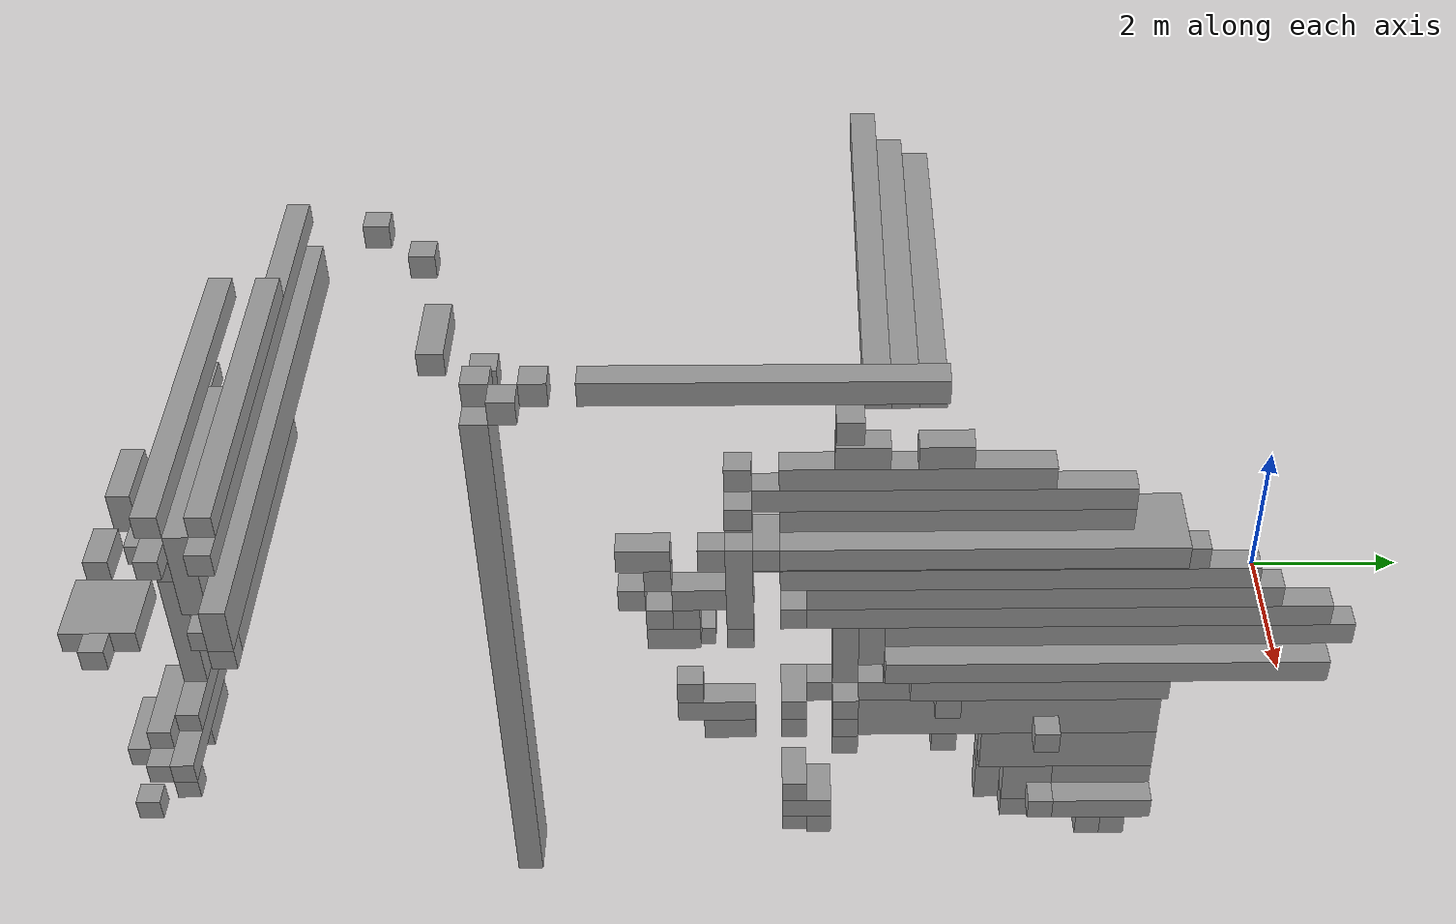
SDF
<sdf version="1.6">
 <world name="bt_world">
  <include><uri>model://sun</uri></include>
  <model name="obstacle_1869">
   <static>true</static>
   <pose>0.8999999999999999 -13.049999999999999 3.3 0 0 0</pose>
   <link name="link">
    <collision name="collision"><geometry><box><size>7.199999999999999 0.3 0.6</size></box></geometry></collision>
    <visual name="visual">
     <geometry><box><size>7.199999999999999 0.3 0.6</size></box></geometry>
     <material><ambient>0.5 0.5 0.5 1</ambient><diffuse>0.6 0.6 0.6 1</diffuse></material>
    </visual>
   </link>
  </model>
  <model name="obstacle_1879">
   <static>true</static>
   <pose>1.05 -13.049999999999999 4.35 0 0 0</pose>
   <link name="link">
    <collision name="collision">
     <geometry><box><size>6.8999999999999995 0.3 0.3</size></box></geometry>
    </collision>
    <visual name="visual">
     <geometry><box><size>6.8999999999999995 0.3 0.3</size></box></geometry>
     <material><ambient>0.5 0.5 0.5 1</ambient><diffuse>0.6 0.6 0.6 1</diffuse></material>
    </visual>
   </link>
  </model>
  <model name="obstacle_1964">
   <static>true</static>
   <pose>1.5 -5.55 6.45 0 0 0</pose>
   <link name="link">
    <collision name="collision">
     <geometry><box><size>5.3999999999999995 0.3 0.3</size></box></geometry>
    </collision>
    <visual name="visual">
     <geometry><box><size>5.3999999999999995 0.3 0.3</size></box></geometry>
     <material><ambient>0.5 0.5 0.5 1</ambient><diffuse>0.6 0.6 0.6 1</diffuse></material>
    </visual>
   </link>
  </model>
  <model name="obstacle_1965">
   <static>true</static>
   <pose>0.75 -3.15 -0.15 0 0 0</pose>
   <link name="link">
    <collision name="collision"><geometry><box><size>3.9 0.3 0.3</size></box></geometry></collision>
    <visual name="visual">
     <geometry><box><size>3.9 0.3 0.3</size></box></geometry>
     <material><ambient>0.5 0.5 0.5 1</ambient><diffuse>0.6 0.6 0.6 1</diffuse></material>
    </visual>
   </link>
  </model>
  <model name="obstacle_2043">
   <static>true</static>
   <pose>1.05 -14.25 2.85 0 0 0</pose>
   <link name="link">
    <collision name="collision"><geometry><box><size>3.9 0.3 0.3</size></box></geometry></collision>
    <visual name="visual">
     <geometry><box><size>3.9 0.3 0.3</size></box></geometry>
     <material><ambient>0.5 0.5 0.5 1</ambient><diffuse>0.6 0.6 0.6 1</diffuse></material>
    </visual>
   </link>
  </model>
  <model name="obstacle_2045">
   <static>true</static>
   <pose>0.8999999999999999 -2.85 -0.15 0 0 0</pose>
   <link name="link">
    <collision name="collision">
     <geometry><box><size>3.5999999999999996 0.3 0.3</size></box></geometry>
    </collision>
    <visual name="visual">
     <geometry><box><size>3.5999999999999996 0.3 0.3</size></box></geometry>
     <material><ambient>0.5 0.5 0.5 1</ambient><diffuse>0.6 0.6 0.6 1</diffuse></material>
    </visual>
   </link>
  </model>
  <model name="obstacle_2099">
   <static>true</static>
   <pose>1.7999999999999998 -5.25 6.45 0 0 0</pose>
   <link name="link">
    <collision name="collision"><geometry><box><size>4.8 0.3 0.3</size></box></geometry></collision>
    <visual name="visual">
     <geometry><box><size>4.8 0.3 0.3</size></box></geometry>
     <material><ambient>0.5 0.5 0.5 1</ambient><diffuse>0.6 0.6 0.6 1</diffuse></material>
    </visual>
   </link>
  </model>
  <model name="obstacle_2118">
   <static>true</static>
   <pose>1.95 -13.65 4.6499999999999995 0 0 0</pose>
   <link name="link">
    <collision name="collision"><geometry><box><size>4.5 0.3 0.3</size></box></geometry></collision>
    <visual name="visual">
     <geometry><box><size>4.5 0.3 0.3</size></box></geometry>
     <material><ambient>0.5 0.5 0.5 1</ambient><diffuse>0.6 0.6 0.6 1</diffuse></material>
    </visual>
   </link>
  </model>
  <model name="obstacle_2119">
   <static>true</static>
   <pose>1.95 -13.049999999999999 4.6499999999999995 0 0 0</pose>
   <link name="link">
    <collision name="collision"><geometry><box><size>4.5 0.3 0.3</size></box></geometry></collision>
    <visual name="visual">
     <geometry><box><size>4.5 0.3 0.3</size></box></geometry>
     <material><ambient>0.5 0.5 0.5 1</ambient><diffuse>0.6 0.6 0.6 1</diffuse></material>
    </visual>
   </link>
  </model>
  <model name="obstacle_2121">
   <static>true</static>
   <pose>1.95 -4.95 6.45 0 0 0</pose>
   <link name="link">
    <collision name="collision"><geometry><box><size>4.5 0.3 0.3</size></box></geometry></collision>
    <visual name="visual">
     <geometry><box><size>4.5 0.3 0.3</size></box></geometry>
     <material><ambient>0.5 0.5 0.5 1</ambient><diffuse>0.6 0.6 0.6 1</diffuse></material>
    </visual>
   </link>
  </model>
  <model name="obstacle_2163">
   <static>true</static>
   <pose>1.3499999999999999 -14.399999999999999 2.55 0 0 0</pose>
   <link name="link">
    <collision name="collision"><geometry><box><size>2.1 0.6 0.3</size></box></geometry></collision>
    <visual name="visual">
     <geometry><box><size>2.1 0.6 0.3</size></box></geometry>
     <material><ambient>0.5 0.5 0.5 1</ambient><diffuse>0.6 0.6 0.6 1</diffuse></material>
    </visual>
   </link>
  </model>
  <model name="obstacle_2165">
   <static>true</static>
   <pose>2.25 -13.2 2.85 0 0 0</pose>
   <link name="link">
    <collision name="collision"><geometry><box><size>3.9 0.6 0.3</size></box></geometry></collision>
    <visual name="visual">
     <geometry><box><size>3.9 0.6 0.3</size></box></geometry>
     <material><ambient>0.5 0.5 0.5 1</ambient><diffuse>0.6 0.6 0.6 1</diffuse></material>
    </visual>
   </link>
  </model>
  <model name="obstacle_2185">
   <static>true</static>
   <pose>0.8999999999999999 -14.399999999999999 2.25 0 0 0</pose>
   <link name="link">
    <collision name="collision"><geometry><box><size>0.6 0.6 0.3</size></box></geometry></collision>
    <visual name="visual">
     <geometry><box><size>0.6 0.6 0.3</size></box></geometry>
     <material><ambient>0.5 0.5 0.5 1</ambient><diffuse>0.6 0.6 0.6 1</diffuse></material>
    </visual>
   </link>
  </model>
  <model name="obstacle_2190">
   <static>true</static>
   <pose>0.8999999999999999 -7.6499999999999995 -0.15 0 0 0</pose>
   <link name="link">
    <collision name="collision"><geometry><box><size>0.6 0.3 0.3</size></box></geometry></collision>
    <visual name="visual">
     <geometry><box><size>0.6 0.3 0.3</size></box></geometry>
     <material><ambient>0.5 0.5 0.5 1</ambient><diffuse>0.6 0.6 0.6 1</diffuse></material>
    </visual>
   </link>
  </model>
  <model name="obstacle_2206">
   <static>true</static>
   <pose>1.3499999999999999 -14.85 2.6999999999999997 0 0 0</pose>
   <link name="link">
    <collision name="collision">
     <geometry><box><size>0.8999999999999999 0.3 0.6</size></box></geometry>
    </collision>
    <visual name="visual">
     <geometry><box><size>0.8999999999999999 0.3 0.6</size></box></geometry>
     <material><ambient>0.5 0.5 0.5 1</ambient><diffuse>0.6 0.6 0.6 1</diffuse></material>
    </visual>
   </link>
  </model>
  <model name="obstacle_2207">
   <static>true</static>
   <pose>2.25 -14.25 -0.15 0 0 0</pose>
   <link name="link">
    <collision name="collision">
     <geometry><box><size>2.6999999999999997 0.3 0.3</size></box></geometry>
    </collision>
    <visual name="visual">
     <geometry><box><size>2.6999999999999997 0.3 0.3</size></box></geometry>
     <material><ambient>0.5 0.5 0.5 1</ambient><diffuse>0.6 0.6 0.6 1</diffuse></material>
    </visual>
   </link>
  </model>
  <model name="obstacle_2208">
   <static>true</static>
   <pose>1.05 -11.25 6.45 0 0 0</pose>
   <link name="link">
    <collision name="collision"><geometry><box><size>0.3 0.3 0.3</size></box></geometry></collision>
    <visual name="visual">
     <geometry><box><size>0.3 0.3 0.3</size></box></geometry>
     <material><ambient>0.5 0.5 0.5 1</ambient><diffuse>0.6 0.6 0.6 1</diffuse></material>
    </visual>
   </link>
  </model>
  <model name="obstacle_2218">
   <static>true</static>
   <pose>1.3499999999999999 -14.549999999999999 -0.15 0 0 0</pose>
   <link name="link">
    <collision name="collision"><geometry><box><size>0.3 0.3 0.3</size></box></geometry></collision>
    <visual name="visual">
     <geometry><box><size>0.3 0.3 0.3</size></box></geometry>
     <material><ambient>0.5 0.5 0.5 1</ambient><diffuse>0.6 0.6 0.6 1</diffuse></material>
    </visual>
   </link>
  </model>
  <model name="obstacle_2219">
   <static>true</static>
   <pose>1.3499999999999999 -14.25 0.6 0 0 0</pose>
   <link name="link">
    <collision name="collision"><geometry><box><size>0.3 0.3 1.2</size></box></geometry></collision>
    <visual name="visual">
     <geometry><box><size>0.3 0.3 1.2</size></box></geometry>
     <material><ambient>0.5 0.5 0.5 1</ambient><diffuse>0.6 0.6 0.6 1</diffuse></material>
    </visual>
   </link>
  </model>
  <model name="obstacle_2220">
   <static>true</static>
   <pose>1.7999999999999998 -14.25 2.25 0 0 0</pose>
   <link name="link">
    <collision name="collision"><geometry><box><size>1.2 0.3 0.3</size></box></geometry></collision>
    <visual name="visual">
     <geometry><box><size>1.2 0.3 0.3</size></box></geometry>
     <material><ambient>0.5 0.5 0.5 1</ambient><diffuse>0.6 0.6 0.6 1</diffuse></material>
    </visual>
   </link>
  </model>
  <model name="obstacle_2228">
   <static>true</static>
   <pose>1.7999999999999998 -14.549999999999999 2.25 0 0 0</pose>
   <link name="link">
    <collision name="collision"><geometry><box><size>0.6 0.3 0.3</size></box></geometry></collision>
    <visual name="visual">
     <geometry><box><size>0.6 0.3 0.3</size></box></geometry>
     <material><ambient>0.5 0.5 0.5 1</ambient><diffuse>0.6 0.6 0.6 1</diffuse></material>
    </visual>
   </link>
  </model>
  <model name="obstacle_2229">
   <static>true</static>
   <pose>2.85 -13.35 3.9 0 0 0</pose>
   <link name="link">
    <collision name="collision">
     <geometry><box><size>2.6999999999999997 0.3 1.2</size></box></geometry>
    </collision>
    <visual name="visual">
     <geometry><box><size>2.6999999999999997 0.3 1.2</size></box></geometry>
     <material><ambient>0.5 0.5 0.5 1</ambient><diffuse>0.6 0.6 0.6 1</diffuse></material>
    </visual>
   </link>
  </model>
  <model name="obstacle_2230">
   <static>true</static>
   <pose>1.65 -10.65 6.45 0 0 0</pose>
   <link name="link">
    <collision name="collision"><geometry><box><size>0.3 0.3 0.3</size></box></geometry></collision>
    <visual name="visual">
     <geometry><box><size>0.3 0.3 0.3</size></box></geometry>
     <material><ambient>0.5 0.5 0.5 1</ambient><diffuse>0.6 0.6 0.6 1</diffuse></material>
    </visual>
   </link>
  </model>
  <model name="obstacle_2244">
   <static>true</static>
   <pose>2.25 -14.25 -0.44999999999999996 0 0 0</pose>
   <link name="link">
    <collision name="collision">
     <geometry><box><size>0.8999999999999999 0.3 0.3</size></box></geometry>
    </collision>
    <visual name="visual">
     <geometry><box><size>0.8999999999999999 0.3 0.3</size></box></geometry>
     <material><ambient>0.5 0.5 0.5 1</ambient><diffuse>0.6 0.6 0.6 1</diffuse></material>
    </visual>
   </link>
  </model>
  <model name="obstacle_2245">
   <static>true</static>
   <pose>2.4 -14.25 0.15 0 0 0</pose>
   <link name="link">
    <collision name="collision"><geometry><box><size>1.2 0.3 0.3</size></box></geometry></collision>
    <visual name="visual">
     <geometry><box><size>1.2 0.3 0.3</size></box></geometry>
     <material><ambient>0.5 0.5 0.5 1</ambient><diffuse>0.6 0.6 0.6 1</diffuse></material>
    </visual>
   </link>
  </model>
  <model name="obstacle_2246">
   <static>true</static>
   <pose>2.1 -14.25 1.2 0 0 0</pose>
   <link name="link">
    <collision name="collision">
     <geometry><box><size>0.6 0.3 1.7999999999999998</size></box></geometry>
    </collision>
    <visual name="visual">
     <geometry><box><size>0.6 0.3 1.7999999999999998</size></box></geometry>
     <material><ambient>0.5 0.5 0.5 1</ambient><diffuse>0.6 0.6 0.6 1</diffuse></material>
    </visual>
   </link>
  </model>
  <model name="obstacle_2247">
   <static>true</static>
   <pose>2.85 -13.35 3.15 0 0 0</pose>
   <link name="link">
    <collision name="collision"><geometry><box><size>2.1 0.3 0.3</size></box></geometry></collision>
    <visual name="visual">
     <geometry><box><size>2.1 0.3 0.3</size></box></geometry>
     <material><ambient>0.5 0.5 0.5 1</ambient><diffuse>0.6 0.6 0.6 1</diffuse></material>
    </visual>
   </link>
  </model>
  <model name="obstacle_2258">
   <static>true</static>
   <pose>2.85 -14.549999999999999 -0.15 0 0 0</pose>
   <link name="link">
    <collision name="collision"><geometry><box><size>1.5 0.3 0.3</size></box></geometry></collision>
    <visual name="visual">
     <geometry><box><size>1.5 0.3 0.3</size></box></geometry>
     <material><ambient>0.5 0.5 0.5 1</ambient><diffuse>0.6 0.6 0.6 1</diffuse></material>
    </visual>
   </link>
  </model>
  <model name="obstacle_2259">
   <static>true</static>
   <pose>2.6999999999999997 -14.549999999999999 0.15 0 0 0</pose>
   <link name="link">
    <collision name="collision"><geometry><box><size>1.2 0.3 0.3</size></box></geometry></collision>
    <visual name="visual">
     <geometry><box><size>1.2 0.3 0.3</size></box></geometry>
     <material><ambient>0.5 0.5 0.5 1</ambient><diffuse>0.6 0.6 0.6 1</diffuse></material>
    </visual>
   </link>
  </model>
  <model name="obstacle_2273">
   <static>true</static>
   <pose>2.85 -14.85 -0.15 0 0 0</pose>
   <link name="link">
    <collision name="collision">
     <geometry><box><size>0.8999999999999999 0.3 0.3</size></box></geometry>
    </collision>
    <visual name="visual">
     <geometry><box><size>0.8999999999999999 0.3 0.3</size></box></geometry>
     <material><ambient>0.5 0.5 0.5 1</ambient><diffuse>0.6 0.6 0.6 1</diffuse></material>
    </visual>
   </link>
  </model>
  <model name="obstacle_2274">
   <static>true</static>
   <pose>2.6999999999999997 -14.85 2.85 0 0 0</pose>
   <link name="link">
    <collision name="collision"><geometry><box><size>0.6 0.3 0.3</size></box></geometry></collision>
    <visual name="visual">
     <geometry><box><size>0.6 0.3 0.3</size></box></geometry>
     <material><ambient>0.5 0.5 0.5 1</ambient><diffuse>0.6 0.6 0.6 1</diffuse></material>
    </visual>
   </link>
  </model>
  <model name="obstacle_2275">
   <static>true</static>
   <pose>2.55 -3.75 -0.15 0 0 0</pose>
   <link name="link">
    <collision name="collision">
     <geometry><box><size>0.3 0.8999999999999999 0.3</size></box></geometry>
    </collision>
    <visual name="visual">
     <geometry><box><size>0.3 0.8999999999999999 0.3</size></box></geometry>
     <material><ambient>0.5 0.5 0.5 1</ambient><diffuse>0.6 0.6 0.6 1</diffuse></material>
    </visual>
   </link>
  </model>
  <model name="obstacle_2276">
   <static>true</static>
   <pose>2.55 -3.4499999999999997 0.15 0 0 0</pose>
   <link name="link">
    <collision name="collision"><geometry><box><size>0.3 0.3 0.3</size></box></geometry></collision>
    <visual name="visual">
     <geometry><box><size>0.3 0.3 0.3</size></box></geometry>
     <material><ambient>0.5 0.5 0.5 1</ambient><diffuse>0.6 0.6 0.6 1</diffuse></material>
    </visual>
   </link>
  </model>
  <model name="obstacle_2292">
   <static>true</static>
   <pose>3.15 -10.35 6.45 0 0 0</pose>
   <link name="link">
    <collision name="collision">
     <geometry><box><size>0.8999999999999999 0.3 0.3</size></box></geometry>
    </collision>
    <visual name="visual">
     <geometry><box><size>0.8999999999999999 0.3 0.3</size></box></geometry>
     <material><ambient>0.5 0.5 0.5 1</ambient><diffuse>0.6 0.6 0.6 1</diffuse></material>
    </visual>
   </link>
  </model>
  <model name="obstacle_2356">
   <static>true</static>
   <pose>3.75 -14.549999999999999 2.85 0 0 0</pose>
   <link name="link">
    <collision name="collision">
     <geometry><box><size>0.8999999999999999 0.8999999999999999 0.3</size></box></geometry>
    </collision>
    <visual name="visual">
     <geometry><box><size>0.8999999999999999 0.8999999999999999 0.3</size></box></geometry>
     <material><ambient>0.5 0.5 0.5 1</ambient><diffuse>0.6 0.6 0.6 1</diffuse></material>
    </visual>
   </link>
  </model>
  <model name="obstacle_2357">
   <static>true</static>
   <pose>3.4499999999999997 -14.25 -0.44999999999999996 0 0 0</pose>
   <link name="link">
    <collision name="collision"><geometry><box><size>0.3 0.3 0.3</size></box></geometry></collision>
    <visual name="visual">
     <geometry><box><size>0.3 0.3 0.3</size></box></geometry>
     <material><ambient>0.5 0.5 0.5 1</ambient><diffuse>0.6 0.6 0.6 1</diffuse></material>
    </visual>
   </link>
  </model>
  <model name="obstacle_2381">
   <static>true</static>
   <pose>3.75 -9.75 6.45 0 0 0</pose>
   <link name="link">
    <collision name="collision"><geometry><box><size>0.3 0.3 0.3</size></box></geometry></collision>
    <visual name="visual">
     <geometry><box><size>0.3 0.3 0.3</size></box></geometry>
     <material><ambient>0.5 0.5 0.5 1</ambient><diffuse>0.6 0.6 0.6 1</diffuse></material>
    </visual>
   </link>
  </model>
  <model name="obstacle_2392">
   <static>true</static>
   <pose>4.05 -14.549999999999999 -0.15 0 0 0</pose>
   <link name="link">
    <collision name="collision"><geometry><box><size>0.3 0.3 0.3</size></box></geometry></collision>
    <visual name="visual">
     <geometry><box><size>0.3 0.3 0.3</size></box></geometry>
     <material><ambient>0.5 0.5 0.5 1</ambient><diffuse>0.6 0.6 0.6 1</diffuse></material>
    </visual>
   </link>
  </model>
  <model name="obstacle_2393">
   <static>true</static>
   <pose>4.05 -6.3 -0.44999999999999996 0 0 0</pose>
   <link name="link">
    <collision name="collision"><geometry><box><size>0.3 0.6 0.3</size></box></geometry></collision>
    <visual name="visual">
     <geometry><box><size>0.3 0.6 0.3</size></box></geometry>
     <material><ambient>0.5 0.5 0.5 1</ambient><diffuse>0.6 0.6 0.6 1</diffuse></material>
    </visual>
   </link>
  </model>
  <model name="obstacle_2394">
   <static>true</static>
   <pose>4.2 -6.3 0.15 0 0 0</pose>
   <link name="link">
    <collision name="collision"><geometry><box><size>0.6 0.6 0.3</size></box></geometry></collision>
    <visual name="visual">
     <geometry><box><size>0.6 0.6 0.3</size></box></geometry>
     <material><ambient>0.5 0.5 0.5 1</ambient><diffuse>0.6 0.6 0.6 1</diffuse></material>
    </visual>
   </link>
  </model>
  <model name="obstacle_2395">
   <static>true</static>
   <pose>4.2 -6.45 0.44999999999999996 0 0 0</pose>
   <link name="link">
    <collision name="collision"><geometry><box><size>0.6 0.3 0.3</size></box></geometry></collision>
    <visual name="visual">
     <geometry><box><size>0.6 0.3 0.3</size></box></geometry>
     <material><ambient>0.5 0.5 0.5 1</ambient><diffuse>0.6 0.6 0.6 1</diffuse></material>
    </visual>
   </link>
  </model>
  <model name="obstacle_2396">
   <static>true</static>
   <pose>4.35 -4.35 4.6499999999999995 0 0 0</pose>
   <link name="link">
    <collision name="collision">
     <geometry><box><size>0.8999999999999999 4.5 0.3</size></box></geometry>
    </collision>
    <visual name="visual">
     <geometry><box><size>0.8999999999999999 4.5 0.3</size></box></geometry>
     <material><ambient>0.5 0.5 0.5 1</ambient><diffuse>0.6 0.6 0.6 1</diffuse></material>
    </visual>
   </link>
  </model>
  <model name="obstacle_2397">
   <static>true</static>
   <pose>4.2 -6.1499999999999995 -0.15 0 0 0</pose>
   <link name="link">
    <collision name="collision"><geometry><box><size>0.6 0.3 0.3</size></box></geometry></collision>
    <visual name="visual">
     <geometry><box><size>0.6 0.3 0.3</size></box></geometry>
     <material><ambient>0.5 0.5 0.5 1</ambient><diffuse>0.6 0.6 0.6 1</diffuse></material>
    </visual>
   </link>
  </model>
  <model name="obstacle_2398">
   <static>true</static>
   <pose>4.35 -2.85 2.85 0 0 0</pose>
   <link name="link">
    <collision name="collision">
     <geometry><box><size>0.8999999999999999 5.1 0.3</size></box></geometry>
    </collision>
    <visual name="visual">
     <geometry><box><size>0.8999999999999999 5.1 0.3</size></box></geometry>
     <material><ambient>0.5 0.5 0.5 1</ambient><diffuse>0.6 0.6 0.6 1</diffuse></material>
    </visual>
   </link>
  </model>
  <model name="obstacle_2399">
   <static>true</static>
   <pose>4.35 -3.5999999999999996 2.55 0 0 0</pose>
   <link name="link">
    <collision name="collision">
     <geometry><box><size>0.8999999999999999 3.0 0.3</size></box></geometry>
    </collision>
    <visual name="visual">
     <geometry><box><size>0.8999999999999999 3.0 0.3</size></box></geometry>
     <material><ambient>0.5 0.5 0.5 1</ambient><diffuse>0.6 0.6 0.6 1</diffuse></material>
    </visual>
   </link>
  </model>
  <model name="obstacle_2400">
   <static>true</static>
   <pose>4.05 -3.75 0.3 0 0 0</pose>
   <link name="link">
    <collision name="collision">
     <geometry><box><size>0.3 0.8999999999999999 0.6</size></box></geometry>
    </collision>
    <visual name="visual">
     <geometry><box><size>0.3 0.8999999999999999 0.6</size></box></geometry>
     <material><ambient>0.5 0.5 0.5 1</ambient><diffuse>0.6 0.6 0.6 1</diffuse></material>
    </visual>
   </link>
  </model>
  <model name="obstacle_2401">
   <static>true</static>
   <pose>4.05 -4.05 0.75 0 0 0</pose>
   <link name="link">
    <collision name="collision"><geometry><box><size>0.3 0.3 0.3</size></box></geometry></collision>
    <visual name="visual">
     <geometry><box><size>0.3 0.3 0.3</size></box></geometry>
     <material><ambient>0.5 0.5 0.5 1</ambient><diffuse>0.6 0.6 0.6 1</diffuse></material>
    </visual>
   </link>
  </model>
  <model name="obstacle_2402">
   <static>true</static>
   <pose>4.35 -2.6999999999999997 0.44999999999999996 0 0 0</pose>
   <link name="link">
    <collision name="collision">
     <geometry><box><size>0.8999999999999999 1.2 0.3</size></box></geometry>
    </collision>
    <visual name="visual">
     <geometry><box><size>0.8999999999999999 1.2 0.3</size></box></geometry>
     <material><ambient>0.5 0.5 0.5 1</ambient><diffuse>0.6 0.6 0.6 1</diffuse></material>
    </visual>
   </link>
  </model>
  <model name="obstacle_2458">
   <static>true</static>
   <pose>4.35 -14.549999999999999 2.85 0 0 0</pose>
   <link name="link">
    <collision name="collision"><geometry><box><size>0.3 0.3 0.3</size></box></geometry></collision>
    <visual name="visual">
     <geometry><box><size>0.3 0.3 0.3</size></box></geometry>
     <material><ambient>0.5 0.5 0.5 1</ambient><diffuse>0.6 0.6 0.6 1</diffuse></material>
    </visual>
   </link>
  </model>
  <model name="obstacle_2459">
   <static>true</static>
   <pose>4.35 -13.049999999999999 2.85 0 0 0</pose>
   <link name="link">
    <collision name="collision"><geometry><box><size>0.3 0.3 0.3</size></box></geometry></collision>
    <visual name="visual">
     <geometry><box><size>0.3 0.3 0.3</size></box></geometry>
     <material><ambient>0.5 0.5 0.5 1</ambient><diffuse>0.6 0.6 0.6 1</diffuse></material>
    </visual>
   </link>
  </model>
  <model name="obstacle_2460">
   <static>true</static>
   <pose>4.5 -9.75 3.0 0 0 0</pose>
   <link name="link">
    <collision name="collision"><geometry><box><size>0.6 0.3 7.199999999999999</size></box></geometry></collision>
    <visual name="visual">
     <geometry><box><size>0.6 0.3 7.199999999999999</size></box></geometry>
     <material><ambient>0.5 0.5 0.5 1</ambient><diffuse>0.6 0.6 0.6 1</diffuse></material>
    </visual>
   </link>
  </model>
  <model name="obstacle_2461">
   <static>true</static>
   <pose>4.35 -9.75 6.75 0 0 0</pose>
   <link name="link">
    <collision name="collision"><geometry><box><size>0.3 0.3 0.3</size></box></geometry></collision>
    <visual name="visual">
     <geometry><box><size>0.3 0.3 0.3</size></box></geometry>
     <material><ambient>0.5 0.5 0.5 1</ambient><diffuse>0.6 0.6 0.6 1</diffuse></material>
    </visual>
   </link>
  </model>
  <model name="obstacle_2462">
   <static>true</static>
   <pose>4.35 -9.15 6.75 0 0 0</pose>
   <link name="link">
    <collision name="collision"><geometry><box><size>0.3 0.3 0.3</size></box></geometry></collision>
    <visual name="visual">
     <geometry><box><size>0.3 0.3 0.3</size></box></geometry>
     <material><ambient>0.5 0.5 0.5 1</ambient><diffuse>0.6 0.6 0.6 1</diffuse></material>
    </visual>
   </link>
  </model>
  <model name="obstacle_2463">
   <static>true</static>
   <pose>4.35 -6.75 6.75 0 0 0</pose>
   <link name="link">
    <collision name="collision"><geometry><box><size>0.3 3.9 0.3</size></box></geometry></collision>
    <visual name="visual">
     <geometry><box><size>0.3 3.9 0.3</size></box></geometry>
     <material><ambient>0.5 0.5 0.5 1</ambient><diffuse>0.6 0.6 0.6 1</diffuse></material>
    </visual>
   </link>
  </model>
  <model name="obstacle_2464">
   <static>true</static>
   <pose>4.5 -7.6499999999999995 3.75 0 0 0</pose>
   <link name="link">
    <collision name="collision"><geometry><box><size>0.6 0.3 0.3</size></box></geometry></collision>
    <visual name="visual">
     <geometry><box><size>0.6 0.3 0.3</size></box></geometry>
     <material><ambient>0.5 0.5 0.5 1</ambient><diffuse>0.6 0.6 0.6 1</diffuse></material>
    </visual>
   </link>
  </model>
  <model name="obstacle_2465">
   <static>true</static>
   <pose>4.5 -7.05 4.2 0 0 0</pose>
   <link name="link">
    <collision name="collision"><geometry><box><size>0.6 0.3 1.2</size></box></geometry></collision>
    <visual name="visual">
     <geometry><box><size>0.6 0.3 1.2</size></box></geometry>
     <material><ambient>0.5 0.5 0.5 1</ambient><diffuse>0.6 0.6 0.6 1</diffuse></material>
    </visual>
   </link>
  </model>
  <model name="obstacle_2466">
   <static>true</static>
   <pose>4.35 -7.05 5.25 0 0 0</pose>
   <link name="link">
    <collision name="collision">
     <geometry><box><size>0.3 0.3 0.8999999999999999</size></box></geometry>
    </collision>
    <visual name="visual">
     <geometry><box><size>0.3 0.3 0.8999999999999999</size></box></geometry>
     <material><ambient>0.5 0.5 0.5 1</ambient><diffuse>0.6 0.6 0.6 1</diffuse></material>
    </visual>
   </link>
  </model>
  <model name="obstacle_2467">
   <static>true</static>
   <pose>4.35 -4.35 4.35 0 0 0</pose>
   <link name="link">
    <collision name="collision"><geometry><box><size>0.3 5.1 0.3</size></box></geometry></collision>
    <visual name="visual">
     <geometry><box><size>0.3 5.1 0.3</size></box></geometry>
     <material><ambient>0.5 0.5 0.5 1</ambient><diffuse>0.6 0.6 0.6 1</diffuse></material>
    </visual>
   </link>
  </model>
  <model name="obstacle_2468">
   <static>true</static>
   <pose>4.5 -6.75 4.6499999999999995 0 0 0</pose>
   <link name="link">
    <collision name="collision"><geometry><box><size>0.6 0.3 0.3</size></box></geometry></collision>
    <visual name="visual">
     <geometry><box><size>0.6 0.3 0.3</size></box></geometry>
     <material><ambient>0.5 0.5 0.5 1</ambient><diffuse>0.6 0.6 0.6 1</diffuse></material>
    </visual>
   </link>
  </model>
  <model name="obstacle_2469">
   <static>true</static>
   <pose>4.35 -4.8 5.25 0 0 0</pose>
   <link name="link">
    <collision name="collision"><geometry><box><size>0.3 4.2 0.3</size></box></geometry></collision>
    <visual name="visual">
     <geometry><box><size>0.3 4.2 0.3</size></box></geometry>
     <material><ambient>0.5 0.5 0.5 1</ambient><diffuse>0.6 0.6 0.6 1</diffuse></material>
    </visual>
   </link>
  </model>
  <model name="obstacle_2470">
   <static>true</static>
   <pose>4.5 -6.45 2.25 0 0 0</pose>
   <link name="link">
    <collision name="collision"><geometry><box><size>0.6 0.3 0.3</size></box></geometry></collision>
    <visual name="visual">
     <geometry><box><size>0.6 0.3 0.3</size></box></geometry>
     <material><ambient>0.5 0.5 0.5 1</ambient><diffuse>0.6 0.6 0.6 1</diffuse></material>
    </visual>
   </link>
  </model>
  <model name="obstacle_2471">
   <static>true</static>
   <pose>4.35 -3.4499999999999997 3.4499999999999997 0 0 0</pose>
   <link name="link">
    <collision name="collision"><geometry><box><size>0.3 6.3 0.3</size></box></geometry></collision>
    <visual name="visual">
     <geometry><box><size>0.3 6.3 0.3</size></box></geometry>
     <material><ambient>0.5 0.5 0.5 1</ambient><diffuse>0.6 0.6 0.6 1</diffuse></material>
    </visual>
   </link>
  </model>
  <model name="obstacle_2472">
   <static>true</static>
   <pose>4.5 -6.45 3.75 0 0 0</pose>
   <link name="link">
    <collision name="collision"><geometry><box><size>0.6 0.3 0.3</size></box></geometry></collision>
    <visual name="visual">
     <geometry><box><size>0.6 0.3 0.3</size></box></geometry>
     <material><ambient>0.5 0.5 0.5 1</ambient><diffuse>0.6 0.6 0.6 1</diffuse></material>
    </visual>
   </link>
  </model>
  <model name="obstacle_2473">
   <static>true</static>
   <pose>4.35 -3.9 4.05 0 0 0</pose>
   <link name="link">
    <collision name="collision">
     <geometry><box><size>0.3 5.3999999999999995 0.3</size></box></geometry>
    </collision>
    <visual name="visual">
     <geometry><box><size>0.3 5.3999999999999995 0.3</size></box></geometry>
     <material><ambient>0.5 0.5 0.5 1</ambient><diffuse>0.6 0.6 0.6 1</diffuse></material>
    </visual>
   </link>
  </model>
  <model name="obstacle_2474">
   <static>true</static>
   <pose>4.35 -4.6499999999999995 4.95 0 0 0</pose>
   <link name="link">
    <collision name="collision"><geometry><box><size>0.3 3.9 0.3</size></box></geometry></collision>
    <visual name="visual">
     <geometry><box><size>0.3 3.9 0.3</size></box></geometry>
     <material><ambient>0.5 0.5 0.5 1</ambient><diffuse>0.6 0.6 0.6 1</diffuse></material>
    </visual>
   </link>
  </model>
  <model name="obstacle_2475">
   <static>true</static>
   <pose>4.35 -5.1 5.55 0 0 0</pose>
   <link name="link">
    <collision name="collision"><geometry><box><size>0.3 3.0 0.3</size></box></geometry></collision>
    <visual name="visual">
     <geometry><box><size>0.3 3.0 0.3</size></box></geometry>
     <material><ambient>0.5 0.5 0.5 1</ambient><diffuse>0.6 0.6 0.6 1</diffuse></material>
    </visual>
   </link>
  </model>
  <model name="obstacle_2476">
   <static>true</static>
   <pose>4.35 -4.2 2.25 0 0 0</pose>
   <link name="link">
    <collision name="collision"><geometry><box><size>0.3 4.2 0.3</size></box></geometry></collision>
    <visual name="visual">
     <geometry><box><size>0.3 4.2 0.3</size></box></geometry>
     <material><ambient>0.5 0.5 0.5 1</ambient><diffuse>0.6 0.6 0.6 1</diffuse></material>
    </visual>
   </link>
  </model>
  <model name="obstacle_2477">
   <static>true</static>
   <pose>4.35 -3.5999999999999996 3.75 0 0 0</pose>
   <link name="link">
    <collision name="collision">
     <geometry><box><size>0.3 5.3999999999999995 0.3</size></box></geometry>
    </collision>
    <visual name="visual">
     <geometry><box><size>0.3 5.3999999999999995 0.3</size></box></geometry>
     <material><ambient>0.5 0.5 0.5 1</ambient><diffuse>0.6 0.6 0.6 1</diffuse></material>
    </visual>
   </link>
  </model>
  <model name="obstacle_2478">
   <static>true</static>
   <pose>4.5 -5.85 1.95 0 0 0</pose>
   <link name="link">
    <collision name="collision"><geometry><box><size>0.6 0.3 0.3</size></box></geometry></collision>
    <visual name="visual">
     <geometry><box><size>0.6 0.3 0.3</size></box></geometry>
     <material><ambient>0.5 0.5 0.5 1</ambient><diffuse>0.6 0.6 0.6 1</diffuse></material>
    </visual>
   </link>
  </model>
  <model name="obstacle_2479">
   <static>true</static>
   <pose>4.35 -5.85 2.85 0 0 0</pose>
   <link name="link">
    <collision name="collision">
     <geometry><box><size>0.3 0.3 0.8999999999999999</size></box></geometry>
    </collision>
    <visual name="visual">
     <geometry><box><size>0.3 0.3 0.8999999999999999</size></box></geometry>
     <material><ambient>0.5 0.5 0.5 1</ambient><diffuse>0.6 0.6 0.6 1</diffuse></material>
    </visual>
   </link>
  </model>
  <model name="obstacle_2480">
   <static>true</static>
   <pose>4.35 -5.7 5.85 0 0 0</pose>
   <link name="link">
    <collision name="collision"><geometry><box><size>0.3 0.6 0.3</size></box></geometry></collision>
    <visual name="visual">
     <geometry><box><size>0.3 0.6 0.3</size></box></geometry>
     <material><ambient>0.5 0.5 0.5 1</ambient><diffuse>0.6 0.6 0.6 1</diffuse></material>
    </visual>
   </link>
  </model>
  <model name="obstacle_2481">
   <static>true</static>
   <pose>4.35 -3.9 1.7999999999999998 0 0 0</pose>
   <link name="link">
    <collision name="collision">
     <geometry><box><size>0.3 3.5999999999999996 0.6</size></box></geometry>
    </collision>
    <visual name="visual">
     <geometry><box><size>0.3 3.5999999999999996 0.6</size></box></geometry>
     <material><ambient>0.5 0.5 0.5 1</ambient><diffuse>0.6 0.6 0.6 1</diffuse></material>
    </visual>
   </link>
  </model>
  <model name="obstacle_2482">
   <static>true</static>
   <pose>4.35 -5.55 3.0 0 0 0</pose>
   <link name="link">
    <collision name="collision"><geometry><box><size>0.3 0.3 0.6</size></box></geometry></collision>
    <visual name="visual">
     <geometry><box><size>0.3 0.3 0.6</size></box></geometry>
     <material><ambient>0.5 0.5 0.5 1</ambient><diffuse>0.6 0.6 0.6 1</diffuse></material>
    </visual>
   </link>
  </model>
  <model name="obstacle_2483">
   <static>true</static>
   <pose>4.35 -5.25 2.55 0 0 0</pose>
   <link name="link">
    <collision name="collision"><geometry><box><size>0.3 0.3 0.3</size></box></geometry></collision>
    <visual name="visual">
     <geometry><box><size>0.3 0.3 0.3</size></box></geometry>
     <material><ambient>0.5 0.5 0.5 1</ambient><diffuse>0.6 0.6 0.6 1</diffuse></material>
    </visual>
   </link>
  </model>
  <model name="obstacle_2484">
   <static>true</static>
   <pose>4.35 -2.6999999999999997 3.15 0 0 0</pose>
   <link name="link">
    <collision name="collision">
     <geometry><box><size>0.3 5.3999999999999995 0.3</size></box></geometry>
    </collision>
    <visual name="visual">
     <geometry><box><size>0.3 5.3999999999999995 0.3</size></box></geometry>
     <material><ambient>0.5 0.5 0.5 1</ambient><diffuse>0.6 0.6 0.6 1</diffuse></material>
    </visual>
   </link>
  </model>
  <model name="obstacle_2485">
   <static>true</static>
   <pose>4.35 -4.8 5.85 0 0 0</pose>
   <link name="link">
    <collision name="collision"><geometry><box><size>0.3 0.6 0.3</size></box></geometry></collision>
    <visual name="visual">
     <geometry><box><size>0.3 0.6 0.3</size></box></geometry>
     <material><ambient>0.5 0.5 0.5 1</ambient><diffuse>0.6 0.6 0.6 1</diffuse></material>
    </visual>
   </link>
  </model>
  <model name="obstacle_2486">
   <static>true</static>
   <pose>4.35 -4.6499999999999995 1.3499999999999999 0 0 0</pose>
   <link name="link">
    <collision name="collision"><geometry><box><size>0.3 0.3 0.3</size></box></geometry></collision>
    <visual name="visual">
     <geometry><box><size>0.3 0.3 0.3</size></box></geometry>
     <material><ambient>0.5 0.5 0.5 1</ambient><diffuse>0.6 0.6 0.6 1</diffuse></material>
    </visual>
   </link>
  </model>
  <model name="obstacle_2487">
   <static>true</static>
   <pose>4.35 -3.15 1.2 0 0 0</pose>
   <link name="link">
    <collision name="collision"><geometry><box><size>0.3 2.1 0.6</size></box></geometry></collision>
    <visual name="visual">
     <geometry><box><size>0.3 2.1 0.6</size></box></geometry>
     <material><ambient>0.5 0.5 0.5 1</ambient><diffuse>0.6 0.6 0.6 1</diffuse></material>
    </visual>
   </link>
  </model>
  <model name="obstacle_2488">
   <static>true</static>
   <pose>4.35 -3.4499999999999997 0.15 0 0 0</pose>
   <link name="link">
    <collision name="collision">
     <geometry><box><size>0.3 0.8999999999999999 0.3</size></box></geometry>
    </collision>
    <visual name="visual">
     <geometry><box><size>0.3 0.8999999999999999 0.3</size></box></geometry>
     <material><ambient>0.5 0.5 0.5 1</ambient><diffuse>0.6 0.6 0.6 1</diffuse></material>
    </visual>
   </link>
  </model>
  <model name="obstacle_2489">
   <static>true</static>
   <pose>4.35 -3.5999999999999996 0.6 0 0 0</pose>
   <link name="link">
    <collision name="collision"><geometry><box><size>0.3 0.6 0.6</size></box></geometry></collision>
    <visual name="visual">
     <geometry><box><size>0.3 0.6 0.6</size></box></geometry>
     <material><ambient>0.5 0.5 0.5 1</ambient><diffuse>0.6 0.6 0.6 1</diffuse></material>
    </visual>
   </link>
  </model>
  <model name="obstacle_2490">
   <static>true</static>
   <pose>4.35 -2.6999999999999997 0.75 0 0 0</pose>
   <link name="link">
    <collision name="collision"><geometry><box><size>0.3 1.2 0.3</size></box></geometry></collision>
    <visual name="visual">
     <geometry><box><size>0.3 1.2 0.3</size></box></geometry>
     <material><ambient>0.5 0.5 0.5 1</ambient><diffuse>0.6 0.6 0.6 1</diffuse></material>
    </visual>
   </link>
  </model>
  <model name="obstacle_2491">
   <static>true</static>
   <pose>4.5 -2.55 0.15 0 0 0</pose>
   <link name="link">
    <collision name="collision"><geometry><box><size>0.6 0.3 0.3</size></box></geometry></collision>
    <visual name="visual">
     <geometry><box><size>0.6 0.3 0.3</size></box></geometry>
     <material><ambient>0.5 0.5 0.5 1</ambient><diffuse>0.6 0.6 0.6 1</diffuse></material>
    </visual>
   </link>
  </model>
  <model name="obstacle_2554">
   <static>true</static>
   <pose>4.6499999999999995 -9.45 6.75 0 0 0</pose>
   <link name="link">
    <collision name="collision"><geometry><box><size>0.3 0.3 0.3</size></box></geometry></collision>
    <visual name="visual">
     <geometry><box><size>0.3 0.3 0.3</size></box></geometry>
     <material><ambient>0.5 0.5 0.5 1</ambient><diffuse>0.6 0.6 0.6 1</diffuse></material>
    </visual>
   </link>
  </model>
  <model name="obstacle_2555">
   <static>true</static>
   <pose>4.6499999999999995 -8.25 4.05 0 0 0</pose>
   <link name="link">
    <collision name="collision"><geometry><box><size>0.3 0.3 0.3</size></box></geometry></collision>
    <visual name="visual">
     <geometry><box><size>0.3 0.3 0.3</size></box></geometry>
     <material><ambient>0.5 0.5 0.5 1</ambient><diffuse>0.6 0.6 0.6 1</diffuse></material>
    </visual>
   </link>
  </model>
  <model name="obstacle_2556">
   <static>true</static>
   <pose>4.6499999999999995 -8.1 4.6499999999999995 0 0 0</pose>
   <link name="link">
    <collision name="collision"><geometry><box><size>0.3 0.6 0.3</size></box></geometry></collision>
    <visual name="visual">
     <geometry><box><size>0.3 0.6 0.3</size></box></geometry>
     <material><ambient>0.5 0.5 0.5 1</ambient><diffuse>0.6 0.6 0.6 1</diffuse></material>
    </visual>
   </link>
  </model>
  <model name="obstacle_2557">
   <static>true</static>
   <pose>4.6499999999999995 -7.8 3.4499999999999997 0 0 0</pose>
   <link name="link">
    <collision name="collision"><geometry><box><size>0.3 0.6 0.3</size></box></geometry></collision>
    <visual name="visual">
     <geometry><box><size>0.3 0.6 0.3</size></box></geometry>
     <material><ambient>0.5 0.5 0.5 1</ambient><diffuse>0.6 0.6 0.6 1</diffuse></material>
    </visual>
   </link>
  </model>
  <model name="obstacle_2558">
   <static>true</static>
   <pose>4.6499999999999995 -7.949999999999999 3.75 0 0 0</pose>
   <link name="link">
    <collision name="collision"><geometry><box><size>0.3 0.3 0.3</size></box></geometry></collision>
    <visual name="visual">
     <geometry><box><size>0.3 0.3 0.3</size></box></geometry>
     <material><ambient>0.5 0.5 0.5 1</ambient><diffuse>0.6 0.6 0.6 1</diffuse></material>
    </visual>
   </link>
  </model>
  <model name="obstacle_2559">
   <static>true</static>
   <pose>4.6499999999999995 -7.949999999999999 4.35 0 0 0</pose>
   <link name="link">
    <collision name="collision"><geometry><box><size>0.3 0.3 0.3</size></box></geometry></collision>
    <visual name="visual">
     <geometry><box><size>0.3 0.3 0.3</size></box></geometry>
     <material><ambient>0.5 0.5 0.5 1</ambient><diffuse>0.6 0.6 0.6 1</diffuse></material>
    </visual>
   </link>
  </model>
  <model name="obstacle_2560">
   <static>true</static>
   <pose>4.6499999999999995 -7.35 2.25 0 0 0</pose>
   <link name="link">
    <collision name="collision">
     <geometry><box><size>0.3 0.8999999999999999 0.3</size></box></geometry>
    </collision>
    <visual name="visual">
     <geometry><box><size>0.3 0.8999999999999999 0.3</size></box></geometry>
     <material><ambient>0.5 0.5 0.5 1</ambient><diffuse>0.6 0.6 0.6 1</diffuse></material>
    </visual>
   </link>
  </model>
  <model name="obstacle_2561">
   <static>true</static>
   <pose>4.6499999999999995 -7.6499999999999995 2.55 0 0 0</pose>
   <link name="link">
    <collision name="collision"><geometry><box><size>0.3 0.3 0.3</size></box></geometry></collision>
    <visual name="visual">
     <geometry><box><size>0.3 0.3 0.3</size></box></geometry>
     <material><ambient>0.5 0.5 0.5 1</ambient><diffuse>0.6 0.6 0.6 1</diffuse></material>
    </visual>
   </link>
  </model>
  <model name="obstacle_2562">
   <static>true</static>
   <pose>4.6499999999999995 -7.5 4.05 0 0 0</pose>
   <link name="link">
    <collision name="collision"><geometry><box><size>0.3 0.6 0.3</size></box></geometry></collision>
    <visual name="visual">
     <geometry><box><size>0.3 0.6 0.3</size></box></geometry>
     <material><ambient>0.5 0.5 0.5 1</ambient><diffuse>0.6 0.6 0.6 1</diffuse></material>
    </visual>
   </link>
  </model>
  <model name="obstacle_2563">
   <static>true</static>
   <pose>4.6499999999999995 -7.199999999999999 1.95 0 0 0</pose>
   <link name="link">
    <collision name="collision"><geometry><box><size>0.3 0.6 0.3</size></box></geometry></collision>
    <visual name="visual">
     <geometry><box><size>0.3 0.6 0.3</size></box></geometry>
     <material><ambient>0.5 0.5 0.5 1</ambient><diffuse>0.6 0.6 0.6 1</diffuse></material>
    </visual>
   </link>
  </model>
  <model name="obstacle_2564">
   <static>true</static>
   <pose>4.6499999999999995 -7.35 4.6499999999999995 0 0 0</pose>
   <link name="link">
    <collision name="collision"><geometry><box><size>0.3 0.3 0.3</size></box></geometry></collision>
    <visual name="visual">
     <geometry><box><size>0.3 0.3 0.3</size></box></geometry>
     <material><ambient>0.5 0.5 0.5 1</ambient><diffuse>0.6 0.6 0.6 1</diffuse></material>
    </visual>
   </link>
  </model>
  <model name="obstacle_2565">
   <static>true</static>
   <pose>4.6499999999999995 -7.05 3.4499999999999997 0 0 0</pose>
   <link name="link">
    <collision name="collision"><geometry><box><size>0.3 0.3 0.3</size></box></geometry></collision>
    <visual name="visual">
     <geometry><box><size>0.3 0.3 0.3</size></box></geometry>
     <material><ambient>0.5 0.5 0.5 1</ambient><diffuse>0.6 0.6 0.6 1</diffuse></material>
    </visual>
   </link>
  </model>
  <model name="obstacle_2566">
   <static>true</static>
   <pose>4.6499999999999995 -7.05 5.25 0 0 0</pose>
   <link name="link">
    <collision name="collision"><geometry><box><size>0.3 0.3 0.3</size></box></geometry></collision>
    <visual name="visual">
     <geometry><box><size>0.3 0.3 0.3</size></box></geometry>
     <material><ambient>0.5 0.5 0.5 1</ambient><diffuse>0.6 0.6 0.6 1</diffuse></material>
    </visual>
   </link>
  </model>
  <model name="obstacle_2567">
   <static>true</static>
   <pose>4.6499999999999995 -6.45 1.95 0 0 0</pose>
   <link name="link">
    <collision name="collision"><geometry><box><size>0.3 0.3 0.3</size></box></geometry></collision>
    <visual name="visual">
     <geometry><box><size>0.3 0.3 0.3</size></box></geometry>
     <material><ambient>0.5 0.5 0.5 1</ambient><diffuse>0.6 0.6 0.6 1</diffuse></material>
    </visual>
   </link>
  </model>
  <model name="obstacle_2568">
   <static>true</static>
   <pose>4.6499999999999995 -5.85 1.65 0 0 0</pose>
   <link name="link">
    <collision name="collision"><geometry><box><size>0.3 0.3 0.3</size></box></geometry></collision>
    <visual name="visual">
     <geometry><box><size>0.3 0.3 0.3</size></box></geometry>
     <material><ambient>0.5 0.5 0.5 1</ambient><diffuse>0.6 0.6 0.6 1</diffuse></material>
    </visual>
   </link>
  </model>
  <model name="obstacle_2569">
   <static>true</static>
   <pose>4.6499999999999995 -5.85 2.25 0 0 0</pose>
   <link name="link">
    <collision name="collision"><geometry><box><size>0.3 0.3 0.3</size></box></geometry></collision>
    <visual name="visual">
     <geometry><box><size>0.3 0.3 0.3</size></box></geometry>
     <material><ambient>0.5 0.5 0.5 1</ambient><diffuse>0.6 0.6 0.6 1</diffuse></material>
    </visual>
   </link>
  </model>
  <model name="obstacle_2570">
   <static>true</static>
   <pose>4.6499999999999995 -5.85 6.45 0 0 0</pose>
   <link name="link">
    <collision name="collision"><geometry><box><size>0.3 0.3 0.3</size></box></geometry></collision>
    <visual name="visual">
     <geometry><box><size>0.3 0.3 0.3</size></box></geometry>
     <material><ambient>0.5 0.5 0.5 1</ambient><diffuse>0.6 0.6 0.6 1</diffuse></material>
    </visual>
   </link>
  </model>
  <model name="obstacle_2571">
   <static>true</static>
   <pose>4.6499999999999995 -4.6499999999999995 2.25 0 0 0</pose>
   <link name="link">
    <collision name="collision"><geometry><box><size>0.3 0.3 0.3</size></box></geometry></collision>
    <visual name="visual">
     <geometry><box><size>0.3 0.3 0.3</size></box></geometry>
     <material><ambient>0.5 0.5 0.5 1</ambient><diffuse>0.6 0.6 0.6 1</diffuse></material>
    </visual>
   </link>
  </model>
  <model name="obstacle_2572">
   <static>true</static>
   <pose>4.6499999999999995 -3.4499999999999997 0.44999999999999996 0 0 0</pose>
   <link name="link">
    <collision name="collision"><geometry><box><size>0.3 0.3 0.3</size></box></geometry></collision>
    <visual name="visual">
     <geometry><box><size>0.3 0.3 0.3</size></box></geometry>
     <material><ambient>0.5 0.5 0.5 1</ambient><diffuse>0.6 0.6 0.6 1</diffuse></material>
    </visual>
   </link>
  </model>
  <model name="obstacle_2573">
   <static>true</static>
   <pose>4.6499999999999995 -3.4499999999999997 1.65 0 0 0</pose>
   <link name="link">
    <collision name="collision"><geometry><box><size>0.3 0.3 0.3</size></box></geometry></collision>
    <visual name="visual">
     <geometry><box><size>0.3 0.3 0.3</size></box></geometry>
     <material><ambient>0.5 0.5 0.5 1</ambient><diffuse>0.6 0.6 0.6 1</diffuse></material>
    </visual>
   </link>
  </model>
  <model name="obstacle_2574">
   <static>true</static>
   <pose>4.6499999999999995 -2.85 0.15 0 0 0</pose>
   <link name="link">
    <collision name="collision"><geometry><box><size>0.3 0.3 0.3</size></box></geometry></collision>
    <visual name="visual">
     <geometry><box><size>0.3 0.3 0.3</size></box></geometry>
     <material><ambient>0.5 0.5 0.5 1</ambient><diffuse>0.6 0.6 0.6 1</diffuse></material>
    </visual>
   </link>
  </model>
 </world>
</sdf>
